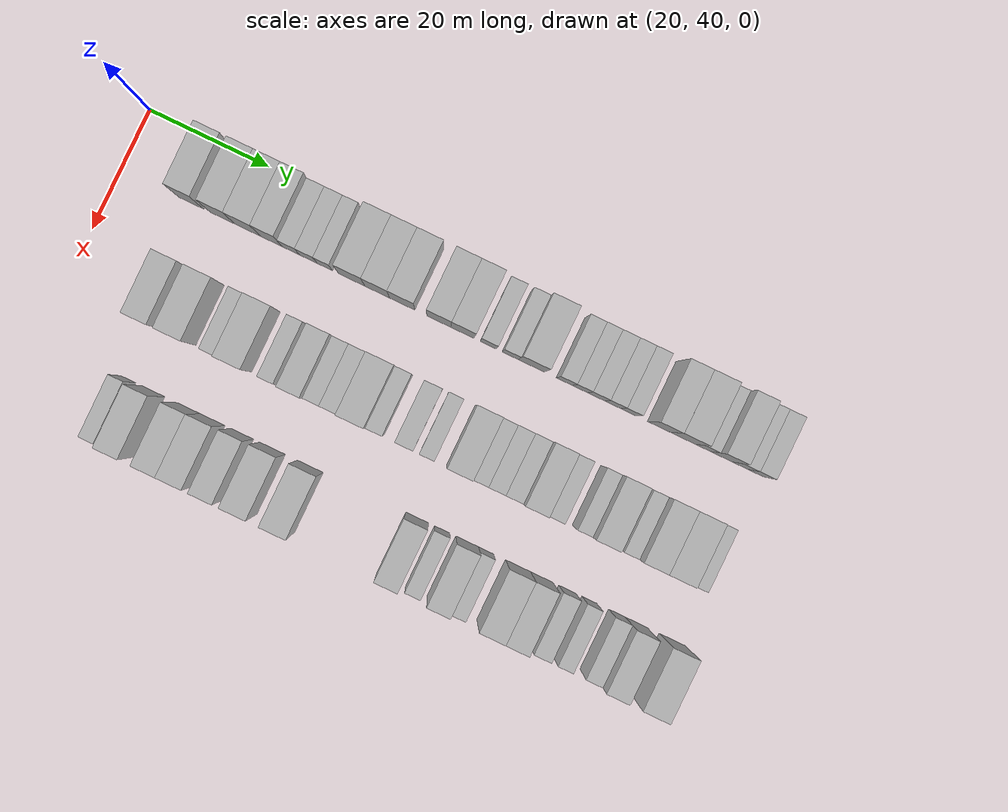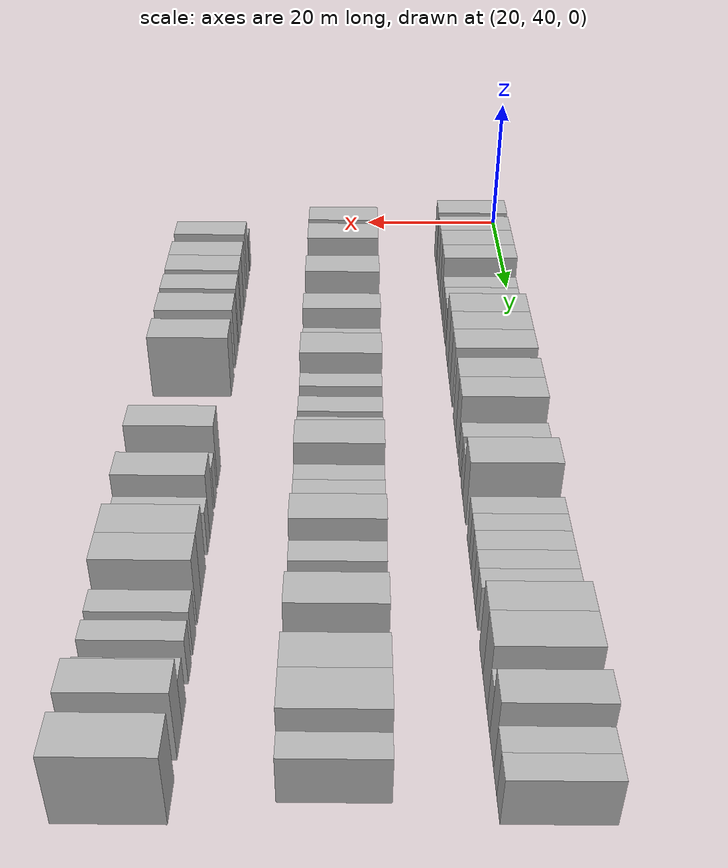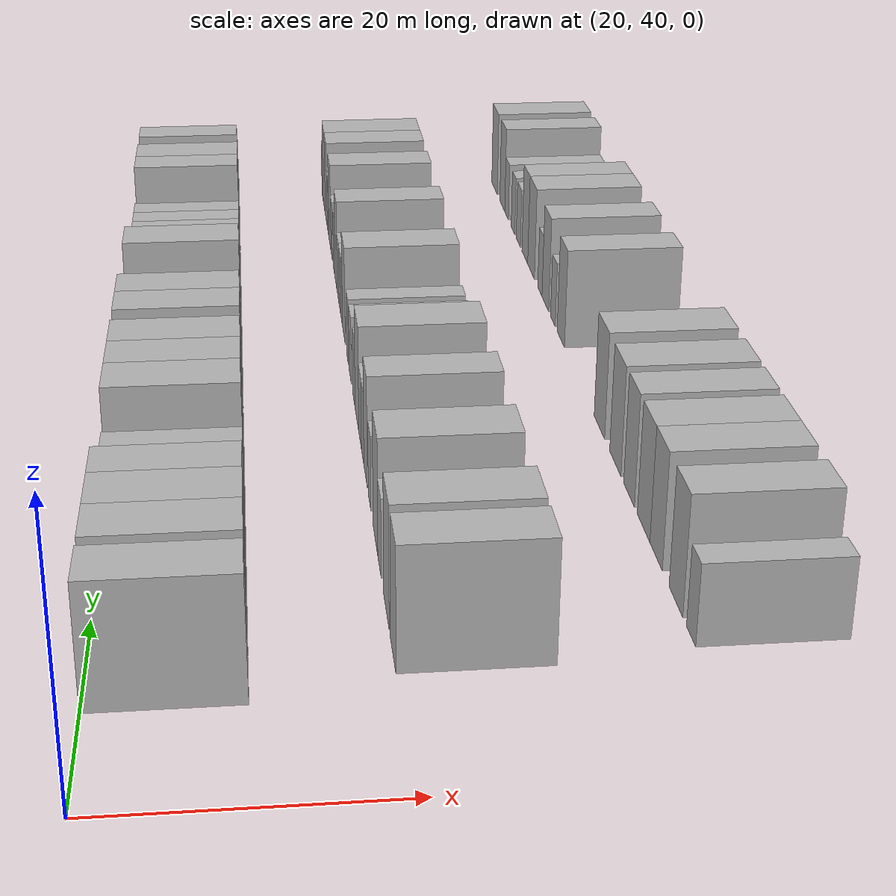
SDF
<sdf version="1.6">
 <world name="default">
  <model name="building_61">
   <static>1</static>
   <pose>25.0000 51.8195 0 0.000000 0.000000 0.000000</pose>
   <link name="link">
    <pose>0 0 4.50 0 0 0</pose>
    <collision name="collision"><geometry><box><size>10.0000 4.1729 9.0000</size></box></geometry></collision>
    <visual name="visual">
     <cast_shadows>0</cast_shadows>
     <geometry><box><size>10.0000 4.1729 9.0000</size></box></geometry>
     <material>
      <script>
       <uri>model://HANNAS_wall/materials/scripts</uri>
       <uri>model://HANNAS_wall/materials/textures</uri>
       <name>vrc/HANNAS_wall</name>
      </script>
     </material>
    </visual>
   </link>
  </model>
  <model name="building_62">
   <static>1</static>
   <pose>25.0000 57.0015 0 0.000000 0.000000 0.000000</pose>
   <link name="link">
    <pose>0 0 4.50 0 0 0</pose>
    <collision name="collision"><geometry><box><size>10.0000 4.1911 9.0000</size></box></geometry></collision>
    <visual name="visual">
     <cast_shadows>0</cast_shadows>
     <geometry><box><size>10.0000 4.1911 9.0000</size></box></geometry>
     <material>
      <script>
       <uri>model://HANNAS_wall/materials/scripts</uri>
       <uri>model://HANNAS_wall/materials/textures</uri>
       <name>vrc/HANNAS_wall</name>
      </script>
     </material>
    </visual>
   </link>
  </model>
  <model name="building_63">
   <static>1</static>
   <pose>25.0000 61.2238 0 0.000000 0.000000 0.000000</pose>
   <link name="link">
    <pose>0 0 4.50 0 0 0</pose>
    <collision name="collision"><geometry><box><size>10.0000 4.2534 9.0000</size></box></geometry></collision>
    <visual name="visual">
     <cast_shadows>0</cast_shadows>
     <geometry><box><size>10.0000 4.2534 9.0000</size></box></geometry>
     <material>
      <script>
       <uri>model://HANNAS_wall/materials/scripts</uri>
       <uri>model://HANNAS_wall/materials/textures</uri>
       <name>vrc/HANNAS_wall</name>
      </script>
     </material>
    </visual>
   </link>
  </model>
  <model name="building_64">
   <static>1</static>
   <pose>25.0000 65.2014 0 0.000000 0.000000 0.000000</pose>
   <link name="link">
    <pose>0 0 4.50 0 0 0</pose>
    <collision name="collision"><geometry><box><size>10.0000 3.7018 9.0000</size></box></geometry></collision>
    <visual name="visual">
     <cast_shadows>0</cast_shadows>
     <geometry><box><size>10.0000 3.7018 9.0000</size></box></geometry>
     <material>
      <script>
       <uri>model://HANNAS_wall/materials/scripts</uri>
       <uri>model://HANNAS_wall/materials/textures</uri>
       <name>vrc/HANNAS_wall</name>
      </script>
     </material>
    </visual>
   </link>
  </model>
  <model name="building_65">
   <static>1</static>
   <pose>25.0000 68.4836 0 0.000000 0.000000 0.000000</pose>
   <link name="link">
    <pose>0 0 3.00 0 0 0</pose>
    <collision name="collision"><geometry><box><size>10.0000 2.8626 6.0000</size></box></geometry></collision>
    <visual name="visual">
     <cast_shadows>0</cast_shadows>
     <geometry><box><size>10.0000 2.8626 6.0000</size></box></geometry>
     <material>
      <script>
       <uri>model://HANNAS_wall/materials/scripts</uri>
       <uri>model://HANNAS_wall/materials/textures</uri>
       <name>vrc/HANNAS_wall</name>
      </script>
     </material>
    </visual>
   </link>
  </model>
  <model name="building_66">
   <static>1</static>
   <pose>25.0000 71.3664 0 0.000000 0.000000 0.000000</pose>
   <link name="link">
    <pose>0 0 3.00 0 0 0</pose>
    <collision name="collision"><geometry><box><size>10.0000 2.9030 6.0000</size></box></geometry></collision>
    <visual name="visual">
     <cast_shadows>0</cast_shadows>
     <geometry><box><size>10.0000 2.9030 6.0000</size></box></geometry>
     <material>
      <script>
       <uri>model://HANNAS_wall/materials/scripts</uri>
       <uri>model://HANNAS_wall/materials/textures</uri>
       <name>vrc/HANNAS_wall</name>
      </script>
     </material>
    </visual>
   </link>
  </model>
  <model name="building_67">
   <static>1</static>
   <pose>25.0000 74.0977 0 0.000000 0.000000 0.000000</pose>
   <link name="link">
    <pose>0 0 3.00 0 0 0</pose>
    <collision name="collision"><geometry><box><size>10.0000 2.5596 6.0000</size></box></geometry></collision>
    <visual name="visual">
     <cast_shadows>0</cast_shadows>
     <geometry><box><size>10.0000 2.5596 6.0000</size></box></geometry>
     <material>
      <script>
       <uri>model://HANNAS_wall/materials/scripts</uri>
       <uri>model://HANNAS_wall/materials/textures</uri>
       <name>vrc/HANNAS_wall</name>
      </script>
     </material>
    </visual>
   </link>
  </model>
  <model name="building_68">
   <static>1</static>
   <pose>25.0000 78.5699 0 0.000000 0.000000 0.000000</pose>
   <link name="link">
    <pose>0 0 4.50 0 0 0</pose>
    <collision name="collision"><geometry><box><size>10.0000 4.3847 9.0000</size></box></geometry></collision>
    <visual name="visual">
     <cast_shadows>0</cast_shadows>
     <geometry><box><size>10.0000 4.3847 9.0000</size></box></geometry>
     <material>
      <script>
       <uri>model://HANNAS_wall/materials/scripts</uri>
       <uri>model://HANNAS_wall/materials/textures</uri>
       <name>vrc/HANNAS_wall</name>
      </script>
     </material>
    </visual>
   </link>
  </model>
  <model name="building_69">
   <static>1</static>
   <pose>25.0000 82.8144 0 0.000000 0.000000 0.000000</pose>
   <link name="link">
    <pose>0 0 4.50 0 0 0</pose>
    <collision name="collision"><geometry><box><size>10.0000 4.1043 9.0000</size></box></geometry></collision>
    <visual name="visual">
     <cast_shadows>0</cast_shadows>
     <geometry><box><size>10.0000 4.1043 9.0000</size></box></geometry>
     <material>
      <script>
       <uri>model://HANNAS_wall/materials/scripts</uri>
       <uri>model://HANNAS_wall/materials/textures</uri>
       <name>vrc/HANNAS_wall</name>
      </script>
     </material>
    </visual>
   </link>
  </model>
  <model name="building_70">
   <static>1</static>
   <pose>25.0000 86.9653 0 0.000000 0.000000 0.000000</pose>
   <link name="link">
    <pose>0 0 4.50 0 0 0</pose>
    <collision name="collision"><geometry><box><size>10.0000 4.1976 9.0000</size></box></geometry></collision>
    <visual name="visual">
     <cast_shadows>0</cast_shadows>
     <geometry><box><size>10.0000 4.1976 9.0000</size></box></geometry>
     <material>
      <script>
       <uri>model://HANNAS_wall/materials/scripts</uri>
       <uri>model://HANNAS_wall/materials/textures</uri>
       <name>vrc/HANNAS_wall</name>
      </script>
     </material>
    </visual>
   </link>
  </model>
  <model name="building_71">
   <static>1</static>
   <pose>25.0000 93.0570 0 0.000000 0.000000 0.000000</pose>
   <link name="link">
    <pose>0 0 4.50 0 0 0</pose>
    <collision name="collision"><geometry><box><size>10.0000 3.9857 9.0000</size></box></geometry></collision>
    <visual name="visual">
     <cast_shadows>0</cast_shadows>
     <geometry><box><size>10.0000 3.9857 9.0000</size></box></geometry>
     <material>
      <script>
       <uri>model://HANNAS_wall/materials/scripts</uri>
       <uri>model://HANNAS_wall/materials/textures</uri>
       <name>vrc/HANNAS_wall</name>
      </script>
     </material>
    </visual>
   </link>
  </model>
  <model name="building_72">
   <static>1</static>
   <pose>25.0000 96.9984 0 0.000000 0.000000 0.000000</pose>
   <link name="link">
    <pose>0 0 4.50 0 0 0</pose>
    <collision name="collision"><geometry><box><size>10.0000 3.8973 9.0000</size></box></geometry></collision>
    <visual name="visual">
     <cast_shadows>0</cast_shadows>
     <geometry><box><size>10.0000 3.8973 9.0000</size></box></geometry>
     <material>
      <script>
       <uri>model://HANNAS_wall/materials/scripts</uri>
       <uri>model://HANNAS_wall/materials/textures</uri>
       <name>vrc/HANNAS_wall</name>
      </script>
     </material>
    </visual>
   </link>
  </model>
  <model name="building_73">
   <static>1</static>
   <pose>25.0000 101.2844 0 0.000000 0.000000 0.000000</pose>
   <link name="link">
    <pose>0 0 3.00 0 0 0</pose>
    <collision name="collision"><geometry><box><size>10.0000 2.6746 6.0000</size></box></geometry></collision>
    <visual name="visual">
     <cast_shadows>0</cast_shadows>
     <geometry><box><size>10.0000 2.6746 6.0000</size></box></geometry>
     <material>
      <script>
       <uri>model://HANNAS_wall/materials/scripts</uri>
       <uri>model://HANNAS_wall/materials/textures</uri>
       <name>vrc/HANNAS_wall</name>
      </script>
     </material>
    </visual>
   </link>
  </model>
  <model name="building_74">
   <static>1</static>
   <pose>25.0000 104.9696 0 0.000000 0.000000 0.000000</pose>
   <link name="link">
    <pose>0 0 3.00 0 0 0</pose>
    <collision name="collision"><geometry><box><size>10.0000 2.6959 6.0000</size></box></geometry></collision>
    <visual name="visual">
     <cast_shadows>0</cast_shadows>
     <geometry><box><size>10.0000 2.6959 6.0000</size></box></geometry>
     <material>
      <script>
       <uri>model://HANNAS_wall/materials/scripts</uri>
       <uri>model://HANNAS_wall/materials/textures</uri>
       <name>vrc/HANNAS_wall</name>
      </script>
     </material>
    </visual>
   </link>
  </model>
  <model name="building_75">
   <static>1</static>
   <pose>25.0000 108.4925 0 0.000000 0.000000 0.000000</pose>
   <link name="link">
    <pose>0 0 4.50 0 0 0</pose>
    <collision name="collision"><geometry><box><size>10.0000 4.3497 9.0000</size></box></geometry></collision>
    <visual name="visual">
     <cast_shadows>0</cast_shadows>
     <geometry><box><size>10.0000 4.3497 9.0000</size></box></geometry>
     <material>
      <script>
       <uri>model://HANNAS_wall/materials/scripts</uri>
       <uri>model://HANNAS_wall/materials/textures</uri>
       <name>vrc/HANNAS_wall</name>
      </script>
     </material>
    </visual>
   </link>
  </model>
  <model name="building_76">
   <static>1</static>
   <pose>25.0000 113.9845 0 0.000000 0.000000 0.000000</pose>
   <link name="link">
    <pose>0 0 3.00 0 0 0</pose>
    <collision name="collision"><geometry><box><size>10.0000 2.6344 6.0000</size></box></geometry></collision>
    <visual name="visual">
     <cast_shadows>0</cast_shadows>
     <geometry><box><size>10.0000 2.6344 6.0000</size></box></geometry>
     <material>
      <script>
       <uri>model://HANNAS_wall/materials/scripts</uri>
       <uri>model://HANNAS_wall/materials/textures</uri>
       <name>vrc/HANNAS_wall</name>
      </script>
     </material>
    </visual>
   </link>
  </model>
  <model name="building_77">
   <static>1</static>
   <pose>25.0000 116.5583 0 0.000000 0.000000 0.000000</pose>
   <link name="link">
    <pose>0 0 3.00 0 0 0</pose>
    <collision name="collision"><geometry><box><size>10.0000 2.5132 6.0000</size></box></geometry></collision>
    <visual name="visual">
     <cast_shadows>0</cast_shadows>
     <geometry><box><size>10.0000 2.5132 6.0000</size></box></geometry>
     <material>
      <script>
       <uri>model://HANNAS_wall/materials/scripts</uri>
       <uri>model://HANNAS_wall/materials/textures</uri>
       <name>vrc/HANNAS_wall</name>
      </script>
     </material>
    </visual>
   </link>
  </model>
  <model name="building_78">
   <static>1</static>
   <pose>25.0000 119.2169 0 0.000000 0.000000 0.000000</pose>
   <link name="link">
    <pose>0 0 3.00 0 0 0</pose>
    <collision name="collision"><geometry><box><size>10.0000 2.8039 6.0000</size></box></geometry></collision>
    <visual name="visual">
     <cast_shadows>0</cast_shadows>
     <geometry><box><size>10.0000 2.8039 6.0000</size></box></geometry>
     <material>
      <script>
       <uri>model://HANNAS_wall/materials/scripts</uri>
       <uri>model://HANNAS_wall/materials/textures</uri>
       <name>vrc/HANNAS_wall</name>
      </script>
     </material>
    </visual>
   </link>
  </model>
  <model name="building_79">
   <static>1</static>
   <pose>25.0000 121.9386 0 0.000000 0.000000 0.000000</pose>
   <link name="link">
    <pose>0 0 3.00 0 0 0</pose>
    <collision name="collision"><geometry><box><size>10.0000 2.6396 6.0000</size></box></geometry></collision>
    <visual name="visual">
     <cast_shadows>0</cast_shadows>
     <geometry><box><size>10.0000 2.6396 6.0000</size></box></geometry>
     <material>
      <script>
       <uri>model://HANNAS_wall/materials/scripts</uri>
       <uri>model://HANNAS_wall/materials/textures</uri>
       <name>vrc/HANNAS_wall</name>
      </script>
     </material>
    </visual>
   </link>
  </model>
  <model name="building_80">
   <static>1</static>
   <pose>25.0000 124.5651 0 0.000000 0.000000 0.000000</pose>
   <link name="link">
    <pose>0 0 3.00 0 0 0</pose>
    <collision name="collision"><geometry><box><size>10.0000 2.6134 6.0000</size></box></geometry></collision>
    <visual name="visual">
     <cast_shadows>0</cast_shadows>
     <geometry><box><size>10.0000 2.6134 6.0000</size></box></geometry>
     <material>
      <script>
       <uri>model://HANNAS_wall/materials/scripts</uri>
       <uri>model://HANNAS_wall/materials/textures</uri>
       <name>vrc/HANNAS_wall</name>
      </script>
     </material>
    </visual>
   </link>
  </model>
  <model name="building_81">
   <static>1</static>
   <pose>25.0000 129.7046 0 0.000000 0.000000 0.000000</pose>
   <link name="link">
    <pose>0 0 4.50 0 0 0</pose>
    <collision name="collision"><geometry><box><size>10.0000 3.6655 9.0000</size></box></geometry></collision>
    <visual name="visual">
     <cast_shadows>0</cast_shadows>
     <geometry><box><size>10.0000 3.6655 9.0000</size></box></geometry>
     <material>
      <script>
       <uri>model://HANNAS_wall/materials/scripts</uri>
       <uri>model://HANNAS_wall/materials/textures</uri>
       <name>vrc/HANNAS_wall</name>
      </script>
     </material>
    </visual>
   </link>
  </model>
  <model name="building_82">
   <static>1</static>
   <pose>25.0000 133.6609 0 0.000000 0.000000 0.000000</pose>
   <link name="link">
    <pose>0 0 4.50 0 0 0</pose>
    <collision name="collision"><geometry><box><size>10.0000 4.2470 9.0000</size></box></geometry></collision>
    <visual name="visual">
     <cast_shadows>0</cast_shadows>
     <geometry><box><size>10.0000 4.2470 9.0000</size></box></geometry>
     <material>
      <script>
       <uri>model://HANNAS_wall/materials/scripts</uri>
       <uri>model://HANNAS_wall/materials/textures</uri>
       <name>vrc/HANNAS_wall</name>
      </script>
     </material>
    </visual>
   </link>
  </model>
  <model name="building_83">
   <static>1</static>
   <pose>25.0000 137.0384 0 0.000000 0.000000 0.000000</pose>
   <link name="link">
    <pose>0 0 3.00 0 0 0</pose>
    <collision name="collision"><geometry><box><size>10.0000 2.5081 6.0000</size></box></geometry></collision>
    <visual name="visual">
     <cast_shadows>0</cast_shadows>
     <geometry><box><size>10.0000 2.5081 6.0000</size></box></geometry>
     <material>
      <script>
       <uri>model://HANNAS_wall/materials/scripts</uri>
       <uri>model://HANNAS_wall/materials/textures</uri>
       <name>vrc/HANNAS_wall</name>
      </script>
     </material>
    </visual>
   </link>
  </model>
  <model name="building_84">
   <static>1</static>
   <pose>25.0000 140.0937 0 0.000000 0.000000 0.000000</pose>
   <link name="link">
    <pose>0 0 4.50 0 0 0</pose>
    <collision name="collision"><geometry><box><size>10.0000 3.6025 9.0000</size></box></geometry></collision>
    <visual name="visual">
     <cast_shadows>0</cast_shadows>
     <geometry><box><size>10.0000 3.6025 9.0000</size></box></geometry>
     <material>
      <script>
       <uri>model://HANNAS_wall/materials/scripts</uri>
       <uri>model://HANNAS_wall/materials/textures</uri>
       <name>vrc/HANNAS_wall</name>
      </script>
     </material>
    </visual>
   </link>
  </model>
  <model name="building_85">
   <static>1</static>
   <pose>25.0000 143.2323 0 0.000000 0.000000 0.000000</pose>
   <link name="link">
    <pose>0 0 3.00 0 0 0</pose>
    <collision name="collision"><geometry><box><size>10.0000 2.6748 6.0000</size></box></geometry></collision>
    <visual name="visual">
     <cast_shadows>0</cast_shadows>
     <geometry><box><size>10.0000 2.6748 6.0000</size></box></geometry>
     <material>
      <script>
       <uri>model://HANNAS_wall/materials/scripts</uri>
       <uri>model://HANNAS_wall/materials/textures</uri>
       <name>vrc/HANNAS_wall</name>
      </script>
     </material>
    </visual>
   </link>
  </model>
  <model name="building_86">
   <static>1</static>
   <pose>25.0000 145.9092 0 0.000000 0.000000 0.000000</pose>
   <link name="link">
    <pose>0 0 3.00 0 0 0</pose>
    <collision name="collision"><geometry><box><size>10.0000 2.6791 6.0000</size></box></geometry></collision>
    <visual name="visual">
     <cast_shadows>0</cast_shadows>
     <geometry><box><size>10.0000 2.6791 6.0000</size></box></geometry>
     <material>
      <script>
       <uri>model://HANNAS_wall/materials/scripts</uri>
       <uri>model://HANNAS_wall/materials/textures</uri>
       <name>vrc/HANNAS_wall</name>
      </script>
     </material>
    </visual>
   </link>
  </model>
  <model name="building_181">
   <static>1</static>
   <pose>44.0000 54.1902 0 0.000000 0.000000 0.000000</pose>
   <link name="link">
    <pose>0 0 4.50 0 0 0</pose>
    <collision name="collision"><geometry><box><size>10.0000 4.0311 9.0000</size></box></geometry></collision>
    <visual name="visual">
     <cast_shadows>0</cast_shadows>
     <geometry><box><size>10.0000 4.0311 9.0000</size></box></geometry>
     <material>
      <script>
       <uri>model://HANNAS_wall/materials/scripts</uri>
       <uri>model://HANNAS_wall/materials/textures</uri>
       <name>vrc/HANNAS_wall</name>
      </script>
     </material>
    </visual>
   </link>
  </model>
  <model name="building_182">
   <static>1</static>
   <pose>44.0000 59.4070 0 0.000000 0.000000 0.000000</pose>
   <link name="link">
    <pose>0 0 4.50 0 0 0</pose>
    <collision name="collision"><geometry><box><size>10.0000 4.4026 9.0000</size></box></geometry></collision>
    <visual name="visual">
     <cast_shadows>0</cast_shadows>
     <geometry><box><size>10.0000 4.4026 9.0000</size></box></geometry>
     <material>
      <script>
       <uri>model://HANNAS_wall/materials/scripts</uri>
       <uri>model://HANNAS_wall/materials/textures</uri>
       <name>vrc/HANNAS_wall</name>
      </script>
     </material>
    </visual>
   </link>
  </model>
  <model name="building_183">
   <static>1</static>
   <pose>44.0000 65.0675 0 0.000000 0.000000 0.000000</pose>
   <link name="link">
    <pose>0 0 3.00 0 0 0</pose>
    <collision name="collision"><geometry><box><size>10.0000 2.9184 6.0000</size></box></geometry></collision>
    <visual name="visual">
     <cast_shadows>0</cast_shadows>
     <geometry><box><size>10.0000 2.9184 6.0000</size></box></geometry>
     <material>
      <script>
       <uri>model://HANNAS_wall/materials/scripts</uri>
       <uri>model://HANNAS_wall/materials/textures</uri>
       <name>vrc/HANNAS_wall</name>
      </script>
     </material>
    </visual>
   </link>
  </model>
  <model name="building_184">
   <static>1</static>
   <pose>44.0000 68.7358 0 0.000000 0.000000 0.000000</pose>
   <link name="link">
    <pose>0 0 4.50 0 0 0</pose>
    <collision name="collision"><geometry><box><size>10.0000 4.4181 9.0000</size></box></geometry></collision>
    <visual name="visual">
     <cast_shadows>0</cast_shadows>
     <geometry><box><size>10.0000 4.4181 9.0000</size></box></geometry>
     <material>
      <script>
       <uri>model://HANNAS_wall/materials/scripts</uri>
       <uri>model://HANNAS_wall/materials/textures</uri>
       <name>vrc/HANNAS_wall</name>
      </script>
     </material>
    </visual>
   </link>
  </model>
  <model name="building_185">
   <static>1</static>
   <pose>44.0000 74.2398 0 0.000000 0.000000 0.000000</pose>
   <link name="link">
    <pose>0 0 3.00 0 0 0</pose>
    <collision name="collision"><geometry><box><size>10.0000 2.5899 6.0000</size></box></geometry></collision>
    <visual name="visual">
     <cast_shadows>0</cast_shadows>
     <geometry><box><size>10.0000 2.5899 6.0000</size></box></geometry>
     <material>
      <script>
       <uri>model://HANNAS_wall/materials/scripts</uri>
       <uri>model://HANNAS_wall/materials/textures</uri>
       <name>vrc/HANNAS_wall</name>
      </script>
     </material>
    </visual>
   </link>
  </model>
  <model name="building_186">
   <static>1</static>
   <pose>44.0000 78.3742 0 0.000000 0.000000 0.000000</pose>
   <link name="link">
    <pose>0 0 4.50 0 0 0</pose>
    <collision name="collision"><geometry><box><size>10.0000 3.6790 9.0000</size></box></geometry></collision>
    <visual name="visual">
     <cast_shadows>0</cast_shadows>
     <geometry><box><size>10.0000 3.6790 9.0000</size></box></geometry>
     <material>
      <script>
       <uri>model://HANNAS_wall/materials/scripts</uri>
       <uri>model://HANNAS_wall/materials/textures</uri>
       <name>vrc/HANNAS_wall</name>
      </script>
     </material>
    </visual>
   </link>
  </model>
  <model name="building_187">
   <static>1</static>
   <pose>44.0000 81.5466 0 0.000000 0.000000 0.000000</pose>
   <link name="link">
    <pose>0 0 3.00 0 0 0</pose>
    <collision name="collision"><geometry><box><size>10.0000 2.6658 6.0000</size></box></geometry></collision>
    <visual name="visual">
     <cast_shadows>0</cast_shadows>
     <geometry><box><size>10.0000 2.6658 6.0000</size></box></geometry>
     <material>
      <script>
       <uri>model://HANNAS_wall/materials/scripts</uri>
       <uri>model://HANNAS_wall/materials/textures</uri>
       <name>vrc/HANNAS_wall</name>
      </script>
     </material>
    </visual>
   </link>
  </model>
  <model name="building_188">
   <static>1</static>
   <pose>44.0000 84.3528 0 0.000000 0.000000 0.000000</pose>
   <link name="link">
    <pose>0 0 3.00 0 0 0</pose>
    <collision name="collision"><geometry><box><size>10.0000 2.9465 6.0000</size></box></geometry></collision>
    <visual name="visual">
     <cast_shadows>0</cast_shadows>
     <geometry><box><size>10.0000 2.9465 6.0000</size></box></geometry>
     <material>
      <script>
       <uri>model://HANNAS_wall/materials/scripts</uri>
       <uri>model://HANNAS_wall/materials/textures</uri>
       <name>vrc/HANNAS_wall</name>
      </script>
     </material>
    </visual>
   </link>
  </model>
  <model name="building_189">
   <static>1</static>
   <pose>44.0000 88.0604 0 0.000000 0.000000 0.000000</pose>
   <link name="link">
    <pose>0 0 4.50 0 0 0</pose>
    <collision name="collision"><geometry><box><size>10.0000 4.4689 9.0000</size></box></geometry></collision>
    <visual name="visual">
     <cast_shadows>0</cast_shadows>
     <geometry><box><size>10.0000 4.4689 9.0000</size></box></geometry>
     <material>
      <script>
       <uri>model://HANNAS_wall/materials/scripts</uri>
       <uri>model://HANNAS_wall/materials/textures</uri>
       <name>vrc/HANNAS_wall</name>
      </script>
     </material>
    </visual>
   </link>
  </model>
  <model name="building_190">
   <static>1</static>
   <pose>44.0000 91.6631 0 0.000000 0.000000 0.000000</pose>
   <link name="link">
    <pose>0 0 3.00 0 0 0</pose>
    <collision name="collision"><geometry><box><size>10.0000 2.7364 6.0000</size></box></geometry></collision>
    <visual name="visual">
     <cast_shadows>0</cast_shadows>
     <geometry><box><size>10.0000 2.7364 6.0000</size></box></geometry>
     <material>
      <script>
       <uri>model://HANNAS_wall/materials/scripts</uri>
       <uri>model://HANNAS_wall/materials/textures</uri>
       <name>vrc/HANNAS_wall</name>
      </script>
     </material>
    </visual>
   </link>
  </model>
  <model name="building_191">
   <static>1</static>
   <pose>44.0000 96.5132 0 0.000000 0.000000 0.000000</pose>
   <link name="link">
    <pose>0 0 3.00 0 0 0</pose>
    <collision name="collision"><geometry><box><size>10.0000 2.9639 6.0000</size></box></geometry></collision>
    <visual name="visual">
     <cast_shadows>0</cast_shadows>
     <geometry><box><size>10.0000 2.9639 6.0000</size></box></geometry>
     <material>
      <script>
       <uri>model://HANNAS_wall/materials/scripts</uri>
       <uri>model://HANNAS_wall/materials/textures</uri>
       <name>vrc/HANNAS_wall</name>
      </script>
     </material>
    </visual>
   </link>
  </model>
  <model name="building_192">
   <static>1</static>
   <pose>44.0000 100.2114 0 0.000000 0.000000 0.000000</pose>
   <link name="link">
    <pose>0 0 3.00 0 0 0</pose>
    <collision name="collision"><geometry><box><size>10.0000 2.4325 6.0000</size></box></geometry></collision>
    <visual name="visual">
     <cast_shadows>0</cast_shadows>
     <geometry><box><size>10.0000 2.4325 6.0000</size></box></geometry>
     <material>
      <script>
       <uri>model://HANNAS_wall/materials/scripts</uri>
       <uri>model://HANNAS_wall/materials/textures</uri>
       <name>vrc/HANNAS_wall</name>
      </script>
     </material>
    </visual>
   </link>
  </model>
  <model name="building_193">
   <static>1</static>
   <pose>44.0000 105.4961 0 0.000000 0.000000 0.000000</pose>
   <link name="link">
    <pose>0 0 4.50 0 0 0</pose>
    <collision name="collision"><geometry><box><size>10.0000 4.1368 9.0000</size></box></geometry></collision>
    <visual name="visual">
     <cast_shadows>0</cast_shadows>
     <geometry><box><size>10.0000 4.1368 9.0000</size></box></geometry>
     <material>
      <script>
       <uri>model://HANNAS_wall/materials/scripts</uri>
       <uri>model://HANNAS_wall/materials/textures</uri>
       <name>vrc/HANNAS_wall</name>
      </script>
     </material>
    </visual>
   </link>
  </model>
  <model name="building_194">
   <static>1</static>
   <pose>44.0000 108.8438 0 0.000000 0.000000 0.000000</pose>
   <link name="link">
    <pose>0 0 3.00 0 0 0</pose>
    <collision name="collision"><geometry><box><size>10.0000 2.5586 6.0000</size></box></geometry></collision>
    <visual name="visual">
     <cast_shadows>0</cast_shadows>
     <geometry><box><size>10.0000 2.5586 6.0000</size></box></geometry>
     <material>
      <script>
       <uri>model://HANNAS_wall/materials/scripts</uri>
       <uri>model://HANNAS_wall/materials/textures</uri>
       <name>vrc/HANNAS_wall</name>
      </script>
     </material>
    </visual>
   </link>
  </model>
  <model name="building_195">
   <static>1</static>
   <pose>44.0000 111.5129 0 0.000000 0.000000 0.000000</pose>
   <link name="link">
    <pose>0 0 3.00 0 0 0</pose>
    <collision name="collision"><geometry><box><size>10.0000 2.7798 6.0000</size></box></geometry></collision>
    <visual name="visual">
     <cast_shadows>0</cast_shadows>
     <geometry><box><size>10.0000 2.7798 6.0000</size></box></geometry>
     <material>
      <script>
       <uri>model://HANNAS_wall/materials/scripts</uri>
       <uri>model://HANNAS_wall/materials/textures</uri>
       <name>vrc/HANNAS_wall</name>
      </script>
     </material>
    </visual>
   </link>
  </model>
  <model name="building_196">
   <static>1</static>
   <pose>44.0000 114.3225 0 0.000000 0.000000 0.000000</pose>
   <link name="link">
    <pose>0 0 3.00 0 0 0</pose>
    <collision name="collision"><geometry><box><size>10.0000 2.8394 6.0000</size></box></geometry></collision>
    <visual name="visual">
     <cast_shadows>0</cast_shadows>
     <geometry><box><size>10.0000 2.8394 6.0000</size></box></geometry>
     <material>
      <script>
       <uri>model://HANNAS_wall/materials/scripts</uri>
       <uri>model://HANNAS_wall/materials/textures</uri>
       <name>vrc/HANNAS_wall</name>
      </script>
     </material>
    </visual>
   </link>
  </model>
  <model name="building_197">
   <static>1</static>
   <pose>44.0000 117.6169 0 0.000000 0.000000 0.000000</pose>
   <link name="link">
    <pose>0 0 4.50 0 0 0</pose>
    <collision name="collision"><geometry><box><size>10.0000 3.7494 9.0000</size></box></geometry></collision>
    <visual name="visual">
     <cast_shadows>0</cast_shadows>
     <geometry><box><size>10.0000 3.7494 9.0000</size></box></geometry>
     <material>
      <script>
       <uri>model://HANNAS_wall/materials/scripts</uri>
       <uri>model://HANNAS_wall/materials/textures</uri>
       <name>vrc/HANNAS_wall</name>
      </script>
     </material>
    </visual>
   </link>
  </model>
  <model name="building_198">
   <static>1</static>
   <pose>44.0000 120.9534 0 0.000000 0.000000 0.000000</pose>
   <link name="link">
    <pose>0 0 3.00 0 0 0</pose>
    <collision name="collision"><geometry><box><size>10.0000 2.9235 6.0000</size></box></geometry></collision>
    <visual name="visual">
     <cast_shadows>0</cast_shadows>
     <geometry><box><size>10.0000 2.9235 6.0000</size></box></geometry>
     <material>
      <script>
       <uri>model://HANNAS_wall/materials/scripts</uri>
       <uri>model://HANNAS_wall/materials/textures</uri>
       <name>vrc/HANNAS_wall</name>
      </script>
     </material>
    </visual>
   </link>
  </model>
  <model name="building_199">
   <static>1</static>
   <pose>44.0000 125.6337 0 0.000000 0.000000 0.000000</pose>
   <link name="link">
    <pose>0 0 3.00 0 0 0</pose>
    <collision name="collision"><geometry><box><size>10.0000 2.4371 6.0000</size></box></geometry></collision>
    <visual name="visual">
     <cast_shadows>0</cast_shadows>
     <geometry><box><size>10.0000 2.4371 6.0000</size></box></geometry>
     <material>
      <script>
       <uri>model://HANNAS_wall/materials/scripts</uri>
       <uri>model://HANNAS_wall/materials/textures</uri>
       <name>vrc/HANNAS_wall</name>
      </script>
     </material>
    </visual>
   </link>
  </model>
  <model name="building_200">
   <static>1</static>
   <pose>44.0000 128.8522 0 0.000000 0.000000 0.000000</pose>
   <link name="link">
    <pose>0 0 4.50 0 0 0</pose>
    <collision name="collision"><geometry><box><size>10.0000 3.9999 9.0000</size></box></geometry></collision>
    <visual name="visual">
     <cast_shadows>0</cast_shadows>
     <geometry><box><size>10.0000 3.9999 9.0000</size></box></geometry>
     <material>
      <script>
       <uri>model://HANNAS_wall/materials/scripts</uri>
       <uri>model://HANNAS_wall/materials/textures</uri>
       <name>vrc/HANNAS_wall</name>
      </script>
     </material>
    </visual>
   </link>
  </model>
  <model name="building_201">
   <static>1</static>
   <pose>44.0000 133.0827 0 0.000000 0.000000 0.000000</pose>
   <link name="link">
    <pose>0 0 3.00 0 0 0</pose>
    <collision name="collision"><geometry><box><size>10.0000 2.4610 6.0000</size></box></geometry></collision>
    <visual name="visual">
     <cast_shadows>0</cast_shadows>
     <geometry><box><size>10.0000 2.4610 6.0000</size></box></geometry>
     <material>
      <script>
       <uri>model://HANNAS_wall/materials/scripts</uri>
       <uri>model://HANNAS_wall/materials/textures</uri>
       <name>vrc/HANNAS_wall</name>
      </script>
     </material>
    </visual>
   </link>
  </model>
  <model name="building_202">
   <static>1</static>
   <pose>44.0000 136.3001 0 0.000000 0.000000 0.000000</pose>
   <link name="link">
    <pose>0 0 4.50 0 0 0</pose>
    <collision name="collision"><geometry><box><size>10.0000 3.9738 9.0000</size></box></geometry></collision>
    <visual name="visual">
     <cast_shadows>0</cast_shadows>
     <geometry><box><size>10.0000 3.9738 9.0000</size></box></geometry>
     <material>
      <script>
       <uri>model://HANNAS_wall/materials/scripts</uri>
       <uri>model://HANNAS_wall/materials/textures</uri>
       <name>vrc/HANNAS_wall</name>
      </script>
     </material>
    </visual>
   </link>
  </model>
  <model name="building_203">
   <static>1</static>
   <pose>44.0000 140.4661 0 0.000000 0.000000 0.000000</pose>
   <link name="link">
    <pose>0 0 4.50 0 0 0</pose>
    <collision name="collision"><geometry><box><size>10.0000 4.3580 9.0000</size></box></geometry></collision>
    <visual name="visual">
     <cast_shadows>0</cast_shadows>
     <geometry><box><size>10.0000 4.3580 9.0000</size></box></geometry>
     <material>
      <script>
       <uri>model://HANNAS_wall/materials/scripts</uri>
       <uri>model://HANNAS_wall/materials/textures</uri>
       <name>vrc/HANNAS_wall</name>
      </script>
     </material>
    </visual>
   </link>
  </model>
  <model name="building_204">
   <static>1</static>
   <pose>44.0000 144.0031 0 0.000000 0.000000 0.000000</pose>
   <link name="link">
    <pose>0 0 3.00 0 0 0</pose>
    <collision name="collision"><geometry><box><size>10.0000 2.7161 6.0000</size></box></geometry></collision>
    <visual name="visual">
     <cast_shadows>0</cast_shadows>
     <geometry><box><size>10.0000 2.7161 6.0000</size></box></geometry>
     <material>
      <script>
       <uri>model://HANNAS_wall/materials/scripts</uri>
       <uri>model://HANNAS_wall/materials/textures</uri>
       <name>vrc/HANNAS_wall</name>
      </script>
     </material>
    </visual>
   </link>
  </model>
  <model name="building_298">
   <static>1</static>
   <pose>63.0000 54.6404 0 0.000000 0.000000 0.000000</pose>
   <link name="link">
    <pose>0 0 3.00 0 0 0</pose>
    <collision name="collision"><geometry><box><size>10.0000 2.4439 6.0000</size></box></geometry></collision>
    <visual name="visual">
     <cast_shadows>0</cast_shadows>
     <geometry><box><size>10.0000 2.4439 6.0000</size></box></geometry>
     <material>
      <script>
       <uri>model://HANNAS_wall/materials/scripts</uri>
       <uri>model://HANNAS_wall/materials/textures</uri>
       <name>vrc/HANNAS_wall</name>
      </script>
     </material>
    </visual>
   </link>
  </model>
  <model name="building_299">
   <static>1</static>
   <pose>63.0000 58.8192 0 0.000000 0.000000 0.000000</pose>
   <link name="link">
    <pose>0 0 4.50 0 0 0</pose>
    <collision name="collision"><geometry><box><size>10.0000 3.9137 9.0000</size></box></geometry></collision>
    <visual name="visual">
     <cast_shadows>0</cast_shadows>
     <geometry><box><size>10.0000 3.9137 9.0000</size></box></geometry>
     <material>
      <script>
       <uri>model://HANNAS_wall/materials/scripts</uri>
       <uri>model://HANNAS_wall/materials/textures</uri>
       <name>vrc/HANNAS_wall</name>
      </script>
     </material>
    </visual>
   </link>
  </model>
  <model name="building_300">
   <static>1</static>
   <pose>63.0000 64.7232 0 0.000000 0.000000 0.000000</pose>
   <link name="link">
    <pose>0 0 4.50 0 0 0</pose>
    <collision name="collision"><geometry><box><size>10.0000 3.8943 9.0000</size></box></geometry></collision>
    <visual name="visual">
     <cast_shadows>0</cast_shadows>
     <geometry><box><size>10.0000 3.8943 9.0000</size></box></geometry>
     <material>
      <script>
       <uri>model://HANNAS_wall/materials/scripts</uri>
       <uri>model://HANNAS_wall/materials/textures</uri>
       <name>vrc/HANNAS_wall</name>
      </script>
     </material>
    </visual>
   </link>
  </model>
  <model name="building_301">
   <static>1</static>
   <pose>63.0000 68.7359 0 0.000000 0.000000 0.000000</pose>
   <link name="link">
    <pose>0 0 4.50 0 0 0</pose>
    <collision name="collision"><geometry><box><size>10.0000 4.1310 9.0000</size></box></geometry></collision>
    <visual name="visual">
     <cast_shadows>0</cast_shadows>
     <geometry><box><size>10.0000 4.1310 9.0000</size></box></geometry>
     <material>
      <script>
       <uri>model://HANNAS_wall/materials/scripts</uri>
       <uri>model://HANNAS_wall/materials/textures</uri>
       <name>vrc/HANNAS_wall</name>
      </script>
     </material>
    </visual>
   </link>
  </model>
  <model name="building_302">
   <static>1</static>
   <pose>63.0000 73.7015 0 0.000000 0.000000 0.000000</pose>
   <link name="link">
    <pose>0 0 4.50 0 0 0</pose>
    <collision name="collision"><geometry><box><size>10.0000 3.8002 9.0000</size></box></geometry></collision>
    <visual name="visual">
     <cast_shadows>0</cast_shadows>
     <geometry><box><size>10.0000 3.8002 9.0000</size></box></geometry>
     <material>
      <script>
       <uri>model://HANNAS_wall/materials/scripts</uri>
       <uri>model://HANNAS_wall/materials/textures</uri>
       <name>vrc/HANNAS_wall</name>
      </script>
     </material>
    </visual>
   </link>
  </model>
  <model name="building_303">
   <static>1</static>
   <pose>63.0000 78.7445 0 0.000000 0.000000 0.000000</pose>
   <link name="link">
    <pose>0 0 4.50 0 0 0</pose>
    <collision name="collision"><geometry><box><size>10.0000 4.2858 9.0000</size></box></geometry></collision>
    <visual name="visual">
     <cast_shadows>0</cast_shadows>
     <geometry><box><size>10.0000 4.2858 9.0000</size></box></geometry>
     <material>
      <script>
       <uri>model://HANNAS_wall/materials/scripts</uri>
       <uri>model://HANNAS_wall/materials/textures</uri>
       <name>vrc/HANNAS_wall</name>
      </script>
     </material>
    </visual>
   </link>
  </model>
  <model name="building_304">
   <static>1</static>
   <pose>63.0000 85.0400 0 0.000000 0.000000 0.000000</pose>
   <link name="link">
    <pose>0 0 4.50 0 0 0</pose>
    <collision name="collision"><geometry><box><size>10.0000 4.3051 9.0000</size></box></geometry></collision>
    <visual name="visual">
     <cast_shadows>0</cast_shadows>
     <geometry><box><size>10.0000 4.3051 9.0000</size></box></geometry>
     <material>
      <script>
       <uri>model://HANNAS_wall/materials/scripts</uri>
       <uri>model://HANNAS_wall/materials/textures</uri>
       <name>vrc/HANNAS_wall</name>
      </script>
     </material>
    </visual>
   </link>
  </model>
  <model name="building_305">
   <static>1</static>
   <pose>63.0000 102.8510 0 0.000000 0.000000 0.000000</pose>
   <link name="link">
    <pose>0 0 4.50 0 0 0</pose>
    <collision name="collision"><geometry><box><size>10.0000 3.7724 9.0000</size></box></geometry></collision>
    <visual name="visual">
     <cast_shadows>0</cast_shadows>
     <geometry><box><size>10.0000 3.7724 9.0000</size></box></geometry>
     <material>
      <script>
       <uri>model://HANNAS_wall/materials/scripts</uri>
       <uri>model://HANNAS_wall/materials/textures</uri>
       <name>vrc/HANNAS_wall</name>
      </script>
     </material>
    </visual>
   </link>
  </model>
  <model name="building_306">
   <static>1</static>
   <pose>63.0000 107.0152 0 0.000000 0.000000 0.000000</pose>
   <link name="link">
    <pose>0 0 3.00 0 0 0</pose>
    <collision name="collision"><geometry><box><size>10.0000 2.5560 6.0000</size></box></geometry></collision>
    <visual name="visual">
     <cast_shadows>0</cast_shadows>
     <geometry><box><size>10.0000 2.5560 6.0000</size></box></geometry>
     <material>
      <script>
       <uri>model://HANNAS_wall/materials/scripts</uri>
       <uri>model://HANNAS_wall/materials/textures</uri>
       <name>vrc/HANNAS_wall</name>
      </script>
     </material>
    </visual>
   </link>
  </model>
  <model name="building_307">
   <static>1</static>
   <pose>63.0000 111.1845 0 0.000000 0.000000 0.000000</pose>
   <link name="link">
    <pose>0 0 4.50 0 0 0</pose>
    <collision name="collision"><geometry><box><size>10.0000 3.7825 9.0000</size></box></geometry></collision>
    <visual name="visual">
     <cast_shadows>0</cast_shadows>
     <geometry><box><size>10.0000 3.7825 9.0000</size></box></geometry>
     <material>
      <script>
       <uri>model://HANNAS_wall/materials/scripts</uri>
       <uri>model://HANNAS_wall/materials/textures</uri>
       <name>vrc/HANNAS_wall</name>
      </script>
     </material>
    </visual>
   </link>
  </model>
  <model name="building_308">
   <static>1</static>
   <pose>63.0000 114.3247 0 0.000000 0.000000 0.000000</pose>
   <link name="link">
    <pose>0 0 3.00 0 0 0</pose>
    <collision name="collision"><geometry><box><size>10.0000 2.4980 6.0000</size></box></geometry></collision>
    <visual name="visual">
     <cast_shadows>0</cast_shadows>
     <geometry><box><size>10.0000 2.4980 6.0000</size></box></geometry>
     <material>
      <script>
       <uri>model://HANNAS_wall/materials/scripts</uri>
       <uri>model://HANNAS_wall/materials/textures</uri>
       <name>vrc/HANNAS_wall</name>
      </script>
     </material>
    </visual>
   </link>
  </model>
  <model name="building_309">
   <static>1</static>
   <pose>63.0000 119.6604 0 0.000000 0.000000 0.000000</pose>
   <link name="link">
    <pose>0 0 4.50 0 0 0</pose>
    <collision name="collision"><geometry><box><size>10.0000 4.1733 9.0000</size></box></geometry></collision>
    <visual name="visual">
     <cast_shadows>0</cast_shadows>
     <geometry><box><size>10.0000 4.1733 9.0000</size></box></geometry>
     <material>
      <script>
       <uri>model://HANNAS_wall/materials/scripts</uri>
       <uri>model://HANNAS_wall/materials/textures</uri>
       <name>vrc/HANNAS_wall</name>
      </script>
     </material>
    </visual>
   </link>
  </model>
  <model name="building_310">
   <static>1</static>
   <pose>63.0000 123.6162 0 0.000000 0.000000 0.000000</pose>
   <link name="link">
    <pose>0 0 4.50 0 0 0</pose>
    <collision name="collision"><geometry><box><size>10.0000 3.7383 9.0000</size></box></geometry></collision>
    <visual name="visual">
     <cast_shadows>0</cast_shadows>
     <geometry><box><size>10.0000 3.7383 9.0000</size></box></geometry>
     <material>
      <script>
       <uri>model://HANNAS_wall/materials/scripts</uri>
       <uri>model://HANNAS_wall/materials/textures</uri>
       <name>vrc/HANNAS_wall</name>
      </script>
     </material>
    </visual>
   </link>
  </model>
  <model name="building_311">
   <static>1</static>
   <pose>63.0000 127.9072 0 0.000000 0.000000 0.000000</pose>
   <link name="link">
    <pose>0 0 3.00 0 0 0</pose>
    <collision name="collision"><geometry><box><size>10.0000 2.8436 6.0000</size></box></geometry></collision>
    <visual name="visual">
     <cast_shadows>0</cast_shadows>
     <geometry><box><size>10.0000 2.8436 6.0000</size></box></geometry>
     <material>
      <script>
       <uri>model://HANNAS_wall/materials/scripts</uri>
       <uri>model://HANNAS_wall/materials/textures</uri>
       <name>vrc/HANNAS_wall</name>
      </script>
     </material>
    </visual>
   </link>
  </model>
  <model name="building_312">
   <static>1</static>
   <pose>63.0000 131.5723 0 0.000000 0.000000 0.000000</pose>
   <link name="link">
    <pose>0 0 3.00 0 0 0</pose>
    <collision name="collision"><geometry><box><size>10.0000 2.4868 6.0000</size></box></geometry></collision>
    <visual name="visual">
     <cast_shadows>0</cast_shadows>
     <geometry><box><size>10.0000 2.4868 6.0000</size></box></geometry>
     <material>
      <script>
       <uri>model://HANNAS_wall/materials/scripts</uri>
       <uri>model://HANNAS_wall/materials/textures</uri>
       <name>vrc/HANNAS_wall</name>
      </script>
     </material>
    </visual>
   </link>
  </model>
  <model name="building_313">
   <static>1</static>
   <pose>63.0000 136.1711 0 0.000000 0.000000 0.000000</pose>
   <link name="link">
    <pose>0 0 3.00 0 0 0</pose>
    <collision name="collision"><geometry><box><size>10.0000 2.7107 6.0000</size></box></geometry></collision>
    <visual name="visual">
     <cast_shadows>0</cast_shadows>
     <geometry><box><size>10.0000 2.7107 6.0000</size></box></geometry>
     <material>
      <script>
       <uri>model://HANNAS_wall/materials/scripts</uri>
       <uri>model://HANNAS_wall/materials/textures</uri>
       <name>vrc/HANNAS_wall</name>
      </script>
     </material>
    </visual>
   </link>
  </model>
  <model name="building_314">
   <static>1</static>
   <pose>63.0000 139.3771 0 0.000000 0.000000 0.000000</pose>
   <link name="link">
    <pose>0 0 4.50 0 0 0</pose>
    <collision name="collision"><geometry><box><size>10.0000 3.7013 9.0000</size></box></geometry></collision>
    <visual name="visual">
     <cast_shadows>0</cast_shadows>
     <geometry><box><size>10.0000 3.7013 9.0000</size></box></geometry>
     <material>
      <script>
       <uri>model://HANNAS_wall/materials/scripts</uri>
       <uri>model://HANNAS_wall/materials/textures</uri>
       <name>vrc/HANNAS_wall</name>
      </script>
     </material>
    </visual>
   </link>
  </model>
  <model name="building_315">
   <static>1</static>
   <pose>63.0000 145.4129 0 0.000000 0.000000 0.000000</pose>
   <link name="link">
    <pose>0 0 4.50 0 0 0</pose>
    <collision name="collision"><geometry><box><size>10.0000 4.3704 9.0000</size></box></geometry></collision>
    <visual name="visual">
     <cast_shadows>0</cast_shadows>
     <geometry><box><size>10.0000 4.3704 9.0000</size></box></geometry>
     <material>
      <script>
       <uri>model://HANNAS_wall/materials/scripts</uri>
       <uri>model://HANNAS_wall/materials/textures</uri>
       <name>vrc/HANNAS_wall</name>
      </script>
     </material>
    </visual>
   </link>
  </model>
 </world>
</sdf>
